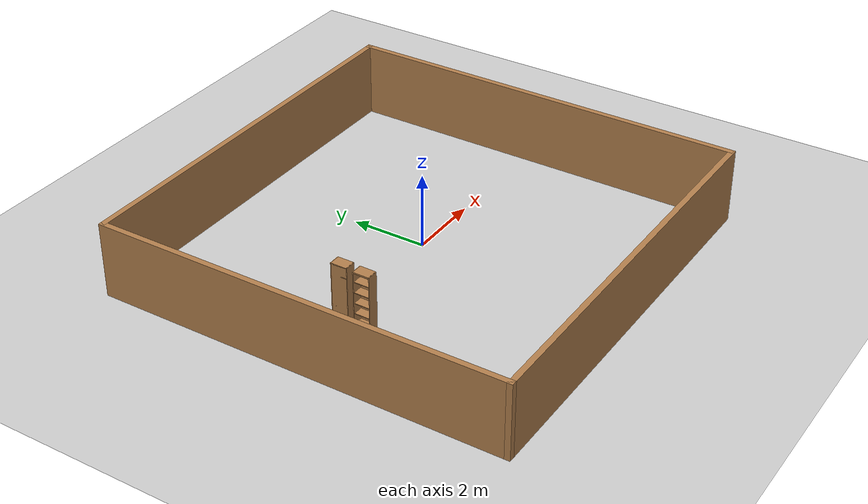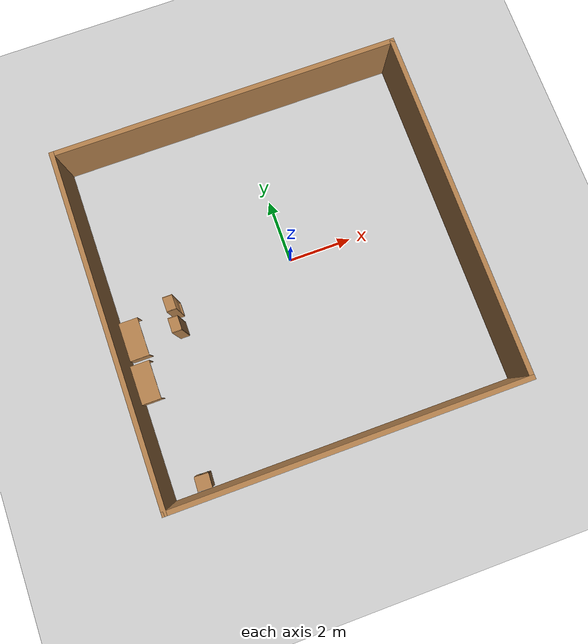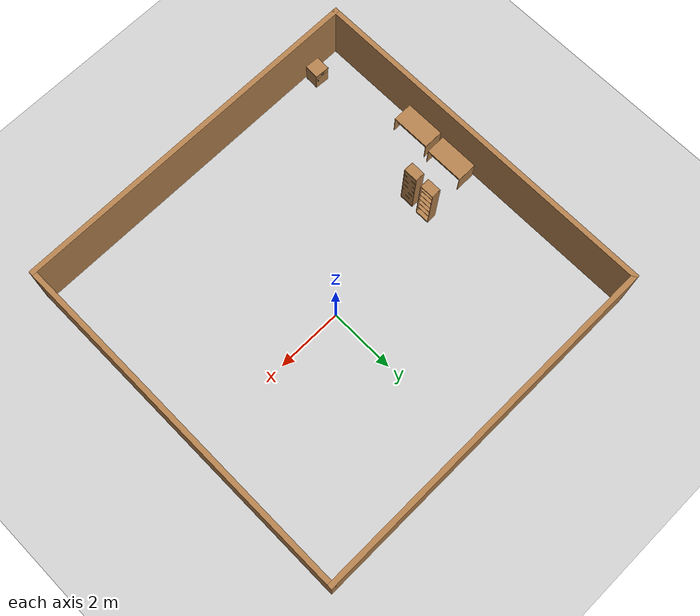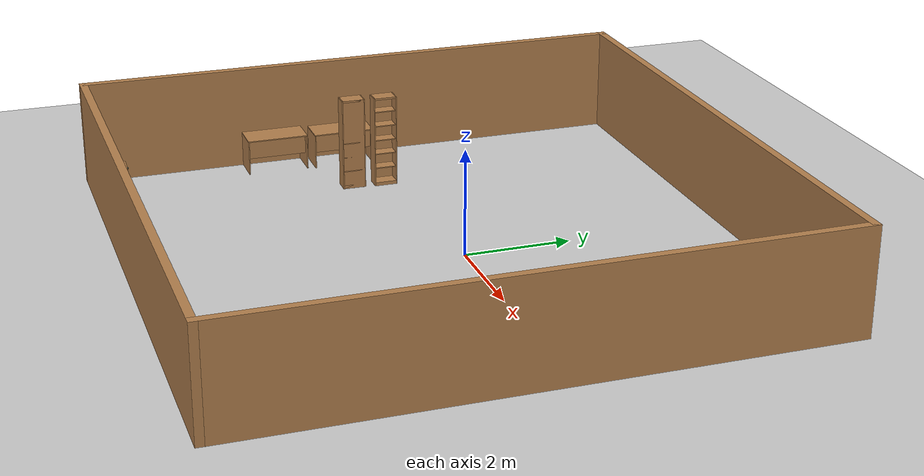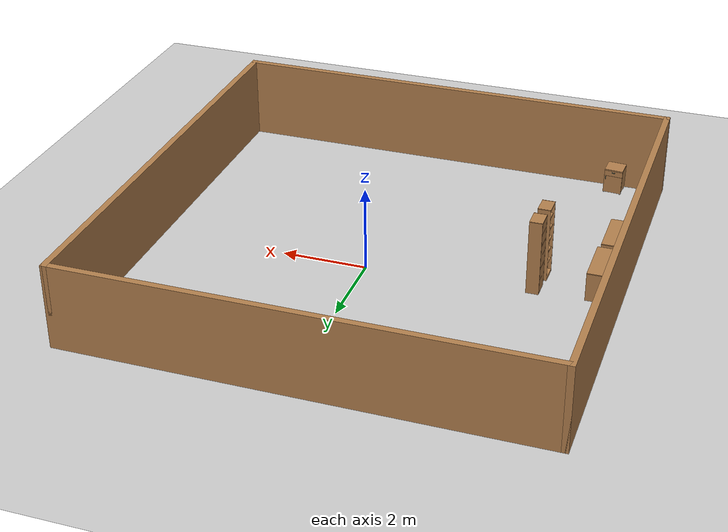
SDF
<sdf version="1.7">
 <world name="default">
  <model name="ground_plane">
   <static>1</static>
   <link name="link">
    <collision name="collision">
     <geometry><plane><normal>0 0 1</normal><size>100 100</size></plane></geometry>
     <surface><friction><ode><mu>100</mu><mu2>50</mu2></ode></friction></surface>
    </collision>
    <visual name="visual">
     <cast_shadows>0</cast_shadows>
     <geometry><plane><normal>0 0 1</normal><size>100 100</size></plane></geometry>
     <material>
      <script><uri>file://media/materials/scripts/gazebo.material</uri><name>Gazebo/Grey</name></script>
     </material>
    </visual>
   </link>
  </model>
  <model name="Untitled">
   <model name="Empty_World">
    <link name="Wall_6">
     <pose>0 5.425 0 0 -0 0</pose>
     <visual name="Wall_6_Visual">
      <pose>0 0 1 0 -0 0</pose>
      <geometry><box><size>11 0.15 2</size></box></geometry>
      <material>
       <script><uri>file://media/materials/scripts/gazebo.material</uri><name>Gazebo/Wood</name></script>
       <ambient>1 1 1 1</ambient>
       <diffuse>1 1 1 1</diffuse>
       <specular>0.2 0.2 0.2 1</specular>
       <emissive>0 0 0 1</emissive>
       <shader type="pixel"/>
      </material>
      <meta><layer>0</layer></meta>
     </visual>
     <collision name="Wall_6_Collision">
      <pose>0 0 1 0 -0 0</pose>
      <geometry><box><size>11 0.15 2</size></box></geometry>
      <surface>
       <friction>
        <ode><mu>1</mu><mu2>1</mu2><fdir1>0 0 0</fdir1><slip1>0</slip1><slip2>0</slip2></ode>
        <torsional>
         <coefficient>1</coefficient>
         <patch_radius>0</patch_radius>
         <surface_radius>0</surface_radius>
         <use_patch_radius>1</use_patch_radius>
         <ode><slip>0</slip></ode>
        </torsional>
       </friction>
       <bounce><restitution_coefficient>0</restitution_coefficient><threshold>1e+06</threshold></bounce>
       <contact>
        <collide_without_contact>0</collide_without_contact>
        <collide_without_contact_bitmask>1</collide_without_contact_bitmask>
        <collide_bitmask>1</collide_bitmask>
        <ode>
         <soft_cfm>0</soft_cfm>
         <soft_erp>0.2</soft_erp>
         <kp>1e+13</kp>
         <kd>1</kd>
         <max_vel>0.01</max_vel>
         <min_depth>0</min_depth>
        </ode>
        <bullet>
         <split_impulse>1</split_impulse>
         <split_impulse_penetration_threshold>-0.01</split_impulse_penetration_threshold>
         <soft_cfm>0</soft_cfm>
         <soft_erp>0.2</soft_erp>
         <kp>1e+13</kp>
         <kd>1</kd>
        </bullet>
       </contact>
      </surface>
     </collision>
    </link>
    <link name="Wall_7">
     <pose>5.425 0 0 0 0 -1.5708</pose>
     <visual name="Wall_7_Visual">
      <pose>0 0 1 0 -0 0</pose>
      <geometry><box><size>11 0.15 2</size></box></geometry>
      <material>
       <script><uri>file://media/materials/scripts/gazebo.material</uri><name>Gazebo/Wood</name></script>
       <ambient>1 1 1 1</ambient>
       <diffuse>1 1 1 1</diffuse>
       <specular>0.2 0.2 0.2 1</specular>
       <emissive>0 0 0 1</emissive>
       <shader type="pixel"/>
      </material>
      <meta><layer>0</layer></meta>
     </visual>
     <collision name="Wall_7_Collision">
      <pose>0 0 1 0 -0 0</pose>
      <geometry><box><size>11 0.15 2</size></box></geometry>
      <surface>
       <friction>
        <ode><mu>1</mu><mu2>1</mu2><fdir1>0 0 0</fdir1><slip1>0</slip1><slip2>0</slip2></ode>
        <torsional>
         <coefficient>1</coefficient>
         <patch_radius>0</patch_radius>
         <surface_radius>0</surface_radius>
         <use_patch_radius>1</use_patch_radius>
         <ode><slip>0</slip></ode>
        </torsional>
       </friction>
       <bounce><restitution_coefficient>0</restitution_coefficient><threshold>1e+06</threshold></bounce>
       <contact>
        <collide_without_contact>0</collide_without_contact>
        <collide_without_contact_bitmask>1</collide_without_contact_bitmask>
        <collide_bitmask>1</collide_bitmask>
        <ode>
         <soft_cfm>0</soft_cfm>
         <soft_erp>0.2</soft_erp>
         <kp>1e+13</kp>
         <kd>1</kd>
         <max_vel>0.01</max_vel>
         <min_depth>0</min_depth>
        </ode>
        <bullet>
         <split_impulse>1</split_impulse>
         <split_impulse_penetration_threshold>-0.01</split_impulse_penetration_threshold>
         <soft_cfm>0</soft_cfm>
         <soft_erp>0.2</soft_erp>
         <kp>1e+13</kp>
         <kd>1</kd>
        </bullet>
       </contact>
      </surface>
     </collision>
    </link>
    <link name="Wall_8">
     <pose>0 -5.425 0 0 -0 3.14159</pose>
     <visual name="Wall_8_Visual">
      <pose>0 0 1 0 -0 0</pose>
      <geometry><box><size>11 0.15 2</size></box></geometry>
      <material>
       <script><uri>file://media/materials/scripts/gazebo.material</uri><name>Gazebo/Wood</name></script>
       <ambient>1 1 1 1</ambient>
       <diffuse>1 1 1 1</diffuse>
       <specular>0.2 0.2 0.2 1</specular>
       <emissive>0 0 0 1</emissive>
       <shader type="pixel"/>
      </material>
      <meta><layer>0</layer></meta>
     </visual>
     <collision name="Wall_8_Collision">
      <pose>0 0 1 0 -0 0</pose>
      <geometry><box><size>11 0.15 2</size></box></geometry>
      <surface>
       <friction>
        <ode><mu>1</mu><mu2>1</mu2><fdir1>0 0 0</fdir1><slip1>0</slip1><slip2>0</slip2></ode>
        <torsional>
         <coefficient>1</coefficient>
         <patch_radius>0</patch_radius>
         <surface_radius>0</surface_radius>
         <use_patch_radius>1</use_patch_radius>
         <ode><slip>0</slip></ode>
        </torsional>
       </friction>
       <bounce><restitution_coefficient>0</restitution_coefficient><threshold>1e+06</threshold></bounce>
       <contact>
        <collide_without_contact>0</collide_without_contact>
        <collide_without_contact_bitmask>1</collide_without_contact_bitmask>
        <collide_bitmask>1</collide_bitmask>
        <ode>
         <soft_cfm>0</soft_cfm>
         <soft_erp>0.2</soft_erp>
         <kp>1e+13</kp>
         <kd>1</kd>
         <max_vel>0.01</max_vel>
         <min_depth>0</min_depth>
        </ode>
        <bullet>
         <split_impulse>1</split_impulse>
         <split_impulse_penetration_threshold>-0.01</split_impulse_penetration_threshold>
         <soft_cfm>0</soft_cfm>
         <soft_erp>0.2</soft_erp>
         <kp>1e+13</kp>
         <kd>1</kd>
        </bullet>
       </contact>
      </surface>
     </collision>
    </link>
    <link name="Wall_9">
     <pose>-5.425 0 0 0 -0 1.5708</pose>
     <visual name="Wall_9_Visual">
      <pose>0 0 1 0 -0 0</pose>
      <geometry><box><size>11 0.15 2</size></box></geometry>
      <material>
       <script><uri>file://media/materials/scripts/gazebo.material</uri><name>Gazebo/Wood</name></script>
       <ambient>1 1 1 1</ambient>
       <diffuse>1 1 1 1</diffuse>
       <specular>0.2 0.2 0.2 1</specular>
       <emissive>0 0 0 1</emissive>
       <shader type="pixel"/>
      </material>
      <meta><layer>0</layer></meta>
     </visual>
     <collision name="Wall_9_Collision">
      <pose>0 0 1 0 -0 0</pose>
      <geometry><box><size>11 0.15 2</size></box></geometry>
      <surface>
       <friction>
        <ode><mu>1</mu><mu2>1</mu2><fdir1>0 0 0</fdir1><slip1>0</slip1><slip2>0</slip2></ode>
        <torsional>
         <coefficient>1</coefficient>
         <patch_radius>0</patch_radius>
         <surface_radius>0</surface_radius>
         <use_patch_radius>1</use_patch_radius>
         <ode><slip>0</slip></ode>
        </torsional>
       </friction>
       <bounce><restitution_coefficient>0</restitution_coefficient><threshold>1e+06</threshold></bounce>
       <contact>
        <collide_without_contact>0</collide_without_contact>
        <collide_without_contact_bitmask>1</collide_without_contact_bitmask>
        <collide_bitmask>1</collide_bitmask>
        <ode>
         <soft_cfm>0</soft_cfm>
         <soft_erp>0.2</soft_erp>
         <kp>1e+13</kp>
         <kd>1</kd>
         <max_vel>0.01</max_vel>
         <min_depth>0</min_depth>
        </ode>
        <bullet>
         <split_impulse>1</split_impulse>
         <split_impulse_penetration_threshold>-0.01</split_impulse_penetration_threshold>
         <soft_cfm>0</soft_cfm>
         <soft_erp>0.2</soft_erp>
         <kp>1e+13</kp>
         <kd>1</kd>
        </bullet>
       </contact>
      </surface>
     </collision>
    </link>
    <static>1</static>
   </model>
   <static>0</static>
   <pose>-0.312257 -0.39044 0 0 -0 0</pose>
  </model>
  <model name="office_desk_clone_1">
   <link name="link">
    <inertial>
     <mass>10</mass>
     <inertia><ixx>1</ixx><ixy>0</ixy><ixz>0</ixz><iyy>1</iyy><iyz>0</iyz><izz>1</izz></inertia>
    </inertial>
    <visual name="top_board">
     <pose>-0.3 0.6 0.69 0 -0 0</pose>
     <geometry><box><size>0.6 1.2 0.02</size></box></geometry>
     <material>
      <script>
       <uri>model://base_materials/wood/scripts/wood.material</uri>
       <name>base_materials/dark_wood</name>
      </script>
     </material>
    </visual>
    <collision name="collision_top_board">
     <pose>-0.3 0.6 0.69 0 -0 0</pose>
     <geometry><box><size>0.6 1.2 0.02</size></box></geometry>
    </collision>
    <visual name="left_board">
     <pose>-0.3 0.01 0.34 0 -0 0</pose>
     <geometry><box><size>0.6 0.02 0.68</size></box></geometry>
     <material>
      <script>
       <uri>model://base_materials/wood/scripts/wood.material</uri>
       <name>base_materials/dark_wood</name>
      </script>
     </material>
    </visual>
    <collision name="collision_left_board">
     <pose>-0.3 0.01 0.34 0 -0 0</pose>
     <geometry><box><size>0.6 0.02 0.68</size></box></geometry>
    </collision>
    <visual name="right_board">
     <pose>-0.3 1.19 0.34 0 -0 0</pose>
     <geometry><box><size>0.6 0.02 0.68</size></box></geometry>
     <material>
      <script>
       <uri>model://base_materials/wood/scripts/wood.material</uri>
       <name>base_materials/dark_wood</name>
      </script>
     </material>
    </visual>
    <collision name="collision_right_board">
     <pose>-0.3 1.19 0.34 0 -0 0</pose>
     <geometry><box><size>0.6 0.02 0.68</size></box></geometry>
    </collision>
    <visual name="center_board">
     <pose>-0.14 0.6 0.49 0 -0 0</pose>
     <geometry><box><size>0.02 1.16 0.4</size></box></geometry>
     <material>
      <script>
       <uri>model://base_materials/wood/scripts/wood.material</uri>
       <name>base_materials/dark_wood</name>
      </script>
     </material>
    </visual>
    <collision name="ollision_center_board">
     <pose>-0.14 0.6 0.49 0 -0 0</pose>
     <geometry><box><size>0.02 1.16 0.4</size></box></geometry>
    </collision>
    <velocity_decay><linear>0</linear><angular>0</angular></velocity_decay>
   </link>
   <static>1</static>
   <pose>-5.003 -1.43032 0 0 -0 0</pose>
  </model>
  <model name="office_desk_clone_2">
   <link name="link">
    <inertial>
     <mass>10</mass>
     <inertia><ixx>1</ixx><ixy>0</ixy><ixz>0</ixz><iyy>1</iyy><iyz>0</iyz><izz>1</izz></inertia>
    </inertial>
    <visual name="top_board">
     <pose>-0.3 0.6 0.69 0 -0 0</pose>
     <geometry><box><size>0.6 1.2 0.02</size></box></geometry>
     <material>
      <script>
       <uri>model://base_materials/wood/scripts/wood.material</uri>
       <name>base_materials/dark_wood</name>
      </script>
     </material>
    </visual>
    <collision name="collision_top_board">
     <pose>-0.3 0.6 0.69 0 -0 0</pose>
     <geometry><box><size>0.6 1.2 0.02</size></box></geometry>
    </collision>
    <visual name="left_board">
     <pose>-0.3 0.01 0.34 0 -0 0</pose>
     <geometry><box><size>0.6 0.02 0.68</size></box></geometry>
     <material>
      <script>
       <uri>model://base_materials/wood/scripts/wood.material</uri>
       <name>base_materials/dark_wood</name>
      </script>
     </material>
    </visual>
    <collision name="collision_left_board">
     <pose>-0.3 0.01 0.34 0 -0 0</pose>
     <geometry><box><size>0.6 0.02 0.68</size></box></geometry>
    </collision>
    <visual name="right_board">
     <pose>-0.3 1.19 0.34 0 -0 0</pose>
     <geometry><box><size>0.6 0.02 0.68</size></box></geometry>
     <material>
      <script>
       <uri>model://base_materials/wood/scripts/wood.material</uri>
       <name>base_materials/dark_wood</name>
      </script>
     </material>
    </visual>
    <collision name="collision_right_board">
     <pose>-0.3 1.19 0.34 0 -0 0</pose>
     <geometry><box><size>0.6 0.02 0.68</size></box></geometry>
    </collision>
    <visual name="center_board">
     <pose>-0.14 0.6 0.49 0 -0 0</pose>
     <geometry><box><size>0.02 1.16 0.4</size></box></geometry>
     <material>
      <script>
       <uri>model://base_materials/wood/scripts/wood.material</uri>
       <name>base_materials/dark_wood</name>
      </script>
     </material>
    </visual>
    <collision name="ollision_center_board">
     <pose>-0.14 0.6 0.49 0 -0 0</pose>
     <geometry><box><size>0.02 1.16 0.4</size></box></geometry>
    </collision>
    <velocity_decay><linear>0</linear><angular>0</angular></velocity_decay>
   </link>
   <static>1</static>
   <pose>-5.05966 -2.7706 0 0 -0 0</pose>
  </model>
  <model name="high_shelf_clone_0">
   <link name="link">
    <inertial>
     <mass>5</mass>
     <inertia><ixx>1</ixx><ixy>0</ixy><ixz>0</ixz><iyy>1</iyy><iyz>0</iyz><izz>1</izz></inertia>
    </inertial>
    <visual name="left_board">
     <pose>-0.1475 0.009 0.898 0 -0 0</pose>
     <geometry><box><size>0.295 0.018 1.796</size></box></geometry>
     <material>
      <script>
       <uri>model://base_materials/wood/scripts</uri>
       <uri>model://base_materials/wood/textures</uri>
       <name>base_materials/light_wood</name>
      </script>
     </material>
    </visual>
    <collision name="collision_left_board">
     <pose>-0.1475 0.009 0.898 0 -0 0</pose>
     <geometry><box><size>0.295 0.018 1.796</size></box></geometry>
    </collision>
    <visual name="right_board">
     <pose>-0.1475 0.441 0.898 0 -0 0</pose>
     <geometry><box><size>0.295 0.018 1.796</size></box></geometry>
     <material>
      <script>
       <uri>model://base_materials/wood/scripts</uri>
       <uri>model://base_materials/wood/textures</uri>
       <name>base_materials/light_wood</name>
      </script>
     </material>
    </visual>
    <collision name="collision_right_board">
     <pose>-0.1475 0.441 0.898 0 -0 0</pose>
     <geometry><box><size>0.295 0.018 1.796</size></box></geometry>
    </collision>
    <visual name="top_board">
     <pose>-0.1475 0.225 1.7825 0 -0 0</pose>
     <geometry><box><size>0.295 0.414 0.035</size></box></geometry>
     <material>
      <script>
       <uri>model://base_materials/wood/scripts</uri>
       <uri>model://base_materials/wood/textures</uri>
       <name>base_materials/light_wood</name>
      </script>
     </material>
    </visual>
    <collision name="collision_top_board">
     <pose>-0.1475 0.225 1.7825 0 -0 0</pose>
     <geometry><box><size>0.295 0.414 0.035</size></box></geometry>
    </collision>
    <visual name="1st_shelf">
     <pose>-0.162 0.225 1.51 0 -0 0</pose>
     <geometry><box><size>0.266 0.414 0.018</size></box></geometry>
     <material>
      <script>
       <uri>model://base_materials/wood/scripts</uri>
       <uri>model://base_materials/wood/textures</uri>
       <name>base_materials/light_wood</name>
      </script>
     </material>
    </visual>
    <collision name="collision_1st_shelf">
     <pose>-0.162 0.225 1.51 0 -0 0</pose>
     <geometry><box><size>0.266 0.414 0.018</size></box></geometry>
    </collision>
    <visual name="2nd_shelf">
     <pose>-0.162 0.225 1.22 0 -0 0</pose>
     <geometry><box><size>0.266 0.414 0.018</size></box></geometry>
     <material>
      <script>
       <uri>model://base_materials/wood/scripts</uri>
       <uri>model://base_materials/wood/textures</uri>
       <name>base_materials/light_wood</name>
      </script>
     </material>
    </visual>
    <collision name="collision_2nd_shelf">
     <pose>-0.162 0.225 1.22 0 -0 0</pose>
     <geometry><box><size>0.266 0.414 0.018</size></box></geometry>
    </collision>
    <visual name="3rd_shelf">
     <pose>-0.162 0.225 0.93 0 -0 0</pose>
     <geometry><box><size>0.266 0.414 0.018</size></box></geometry>
     <material>
      <script>
       <uri>model://base_materials/wood/scripts</uri>
       <uri>model://base_materials/wood/textures</uri>
       <name>base_materials/light_wood</name>
      </script>
     </material>
    </visual>
    <collision name="collision_3rd_shelf">
     <pose>-0.162 0.225 0.93 0 -0 0</pose>
     <geometry><box><size>0.266 0.414 0.018</size></box></geometry>
    </collision>
    <visual name="4th_shelf">
     <pose>-0.162 0.225 0.65 0 -0 0</pose>
     <geometry><box><size>0.266 0.414 0.018</size></box></geometry>
     <material>
      <script>
       <uri>model://base_materials/wood/scripts</uri>
       <uri>model://base_materials/wood/textures</uri>
       <name>base_materials/light_wood</name>
      </script>
     </material>
    </visual>
    <collision name="collision_4th_shelf">
     <pose>-0.162 0.225 0.65 0 -0 0</pose>
     <geometry><box><size>0.266 0.414 0.018</size></box></geometry>
    </collision>
    <visual name="5th_shelf">
     <pose>-0.162 0.225 0.36 0 -0 0</pose>
     <geometry><box><size>0.266 0.414 0.018</size></box></geometry>
     <material>
      <script>
       <uri>model://base_materials/wood/scripts</uri>
       <uri>model://base_materials/wood/textures</uri>
       <name>base_materials/light_wood</name>
      </script>
     </material>
    </visual>
    <collision name="collision_5th_shelf">
     <pose>-0.162 0.225 0.36 0 -0 0</pose>
     <geometry><box><size>0.266 0.414 0.018</size></box></geometry>
    </collision>
    <visual name="bottom_board">
     <pose>-0.1475 0.225 0.035 0 -0 0</pose>
     <geometry><box><size>0.295 0.414 0.07</size></box></geometry>
     <material>
      <script>
       <uri>model://base_materials/wood/scripts</uri>
       <uri>model://base_materials/wood/textures</uri>
       <name>base_materials/light_wood</name>
      </script>
     </material>
    </visual>
    <collision name="collision_bottom_board">
     <pose>-0.1475 0.225 0.035 0 -0 0</pose>
     <geometry><box><size>0.295 0.414 0.07</size></box></geometry>
    </collision>
    <visual name="back_board">
     <pose>-0.286 0.225 0.898 0 -0 0</pose>
     <geometry><box><size>0.018 0.414 1.796</size></box></geometry>
     <material>
      <script>
       <uri>model://base_materials/wood/scripts</uri>
       <uri>model://base_materials/wood/textures</uri>
       <name>base_materials/light_wood</name>
      </script>
     </material>
    </visual>
    <collision name="collision_back_board">
     <pose>-0.286 0.225 0.898 0 -0 0</pose>
     <geometry><box><size>0.018 0.414 1.796</size></box></geometry>
    </collision>
    <velocity_decay><linear>0</linear><angular>0</angular></velocity_decay>
   </link>
   <static>1</static>
   <pose>-3.69673 -0.57353 0 0 -0 0</pose>
  </model>
  <model name="high_shelf_clone_clone">
   <link name="link">
    <inertial>
     <mass>5</mass>
     <inertia><ixx>1</ixx><ixy>0</ixy><ixz>0</ixz><iyy>1</iyy><iyz>0</iyz><izz>1</izz></inertia>
    </inertial>
    <visual name="left_board">
     <pose>-0.1475 0.009 0.898 0 -0 0</pose>
     <geometry><box><size>0.295 0.018 1.796</size></box></geometry>
     <material>
      <script>
       <uri>model://base_materials/wood/scripts</uri>
       <uri>model://base_materials/wood/textures</uri>
       <name>base_materials/light_wood</name>
      </script>
     </material>
    </visual>
    <collision name="collision_left_board">
     <pose>-0.1475 0.009 0.898 0 -0 0</pose>
     <geometry><box><size>0.295 0.018 1.796</size></box></geometry>
    </collision>
    <visual name="right_board">
     <pose>-0.1475 0.441 0.898 0 -0 0</pose>
     <geometry><box><size>0.295 0.018 1.796</size></box></geometry>
     <material>
      <script>
       <uri>model://base_materials/wood/scripts</uri>
       <uri>model://base_materials/wood/textures</uri>
       <name>base_materials/light_wood</name>
      </script>
     </material>
    </visual>
    <collision name="collision_right_board">
     <pose>-0.1475 0.441 0.898 0 -0 0</pose>
     <geometry><box><size>0.295 0.018 1.796</size></box></geometry>
    </collision>
    <visual name="top_board">
     <pose>-0.1475 0.225 1.7825 0 -0 0</pose>
     <geometry><box><size>0.295 0.414 0.035</size></box></geometry>
     <material>
      <script>
       <uri>model://base_materials/wood/scripts</uri>
       <uri>model://base_materials/wood/textures</uri>
       <name>base_materials/light_wood</name>
      </script>
     </material>
    </visual>
    <collision name="collision_top_board">
     <pose>-0.1475 0.225 1.7825 0 -0 0</pose>
     <geometry><box><size>0.295 0.414 0.035</size></box></geometry>
    </collision>
    <visual name="1st_shelf">
     <pose>-0.162 0.225 1.51 0 -0 0</pose>
     <geometry><box><size>0.266 0.414 0.018</size></box></geometry>
     <material>
      <script>
       <uri>model://base_materials/wood/scripts</uri>
       <uri>model://base_materials/wood/textures</uri>
       <name>base_materials/light_wood</name>
      </script>
     </material>
    </visual>
    <collision name="collision_1st_shelf">
     <pose>-0.162 0.225 1.51 0 -0 0</pose>
     <geometry><box><size>0.266 0.414 0.018</size></box></geometry>
    </collision>
    <visual name="2nd_shelf">
     <pose>-0.162 0.225 1.22 0 -0 0</pose>
     <geometry><box><size>0.266 0.414 0.018</size></box></geometry>
     <material>
      <script>
       <uri>model://base_materials/wood/scripts</uri>
       <uri>model://base_materials/wood/textures</uri>
       <name>base_materials/light_wood</name>
      </script>
     </material>
    </visual>
    <collision name="collision_2nd_shelf">
     <pose>-0.162 0.225 1.22 0 -0 0</pose>
     <geometry><box><size>0.266 0.414 0.018</size></box></geometry>
    </collision>
    <visual name="3rd_shelf">
     <pose>-0.162 0.225 0.93 0 -0 0</pose>
     <geometry><box><size>0.266 0.414 0.018</size></box></geometry>
     <material>
      <script>
       <uri>model://base_materials/wood/scripts</uri>
       <uri>model://base_materials/wood/textures</uri>
       <name>base_materials/light_wood</name>
      </script>
     </material>
    </visual>
    <collision name="collision_3rd_shelf">
     <pose>-0.162 0.225 0.93 0 -0 0</pose>
     <geometry><box><size>0.266 0.414 0.018</size></box></geometry>
    </collision>
    <visual name="4th_shelf">
     <pose>-0.162 0.225 0.65 0 -0 0</pose>
     <geometry><box><size>0.266 0.414 0.018</size></box></geometry>
     <material>
      <script>
       <uri>model://base_materials/wood/scripts</uri>
       <uri>model://base_materials/wood/textures</uri>
       <name>base_materials/light_wood</name>
      </script>
     </material>
    </visual>
    <collision name="collision_4th_shelf">
     <pose>-0.162 0.225 0.65 0 -0 0</pose>
     <geometry><box><size>0.266 0.414 0.018</size></box></geometry>
    </collision>
    <visual name="5th_shelf">
     <pose>-0.162 0.225 0.36 0 -0 0</pose>
     <geometry><box><size>0.266 0.414 0.018</size></box></geometry>
     <material>
      <script>
       <uri>model://base_materials/wood/scripts</uri>
       <uri>model://base_materials/wood/textures</uri>
       <name>base_materials/light_wood</name>
      </script>
     </material>
    </visual>
    <collision name="collision_5th_shelf">
     <pose>-0.162 0.225 0.36 0 -0 0</pose>
     <geometry><box><size>0.266 0.414 0.018</size></box></geometry>
    </collision>
    <visual name="bottom_board">
     <pose>-0.1475 0.225 0.035 0 -0 0</pose>
     <geometry><box><size>0.295 0.414 0.07</size></box></geometry>
     <material>
      <script>
       <uri>model://base_materials/wood/scripts</uri>
       <uri>model://base_materials/wood/textures</uri>
       <name>base_materials/light_wood</name>
      </script>
     </material>
    </visual>
    <collision name="collision_bottom_board">
     <pose>-0.1475 0.225 0.035 0 -0 0</pose>
     <geometry><box><size>0.295 0.414 0.07</size></box></geometry>
    </collision>
    <visual name="back_board">
     <pose>-0.286 0.225 0.898 0 -0 0</pose>
     <geometry><box><size>0.018 0.414 1.796</size></box></geometry>
     <material>
      <script>
       <uri>model://base_materials/wood/scripts</uri>
       <uri>model://base_materials/wood/textures</uri>
       <name>base_materials/light_wood</name>
      </script>
     </material>
    </visual>
    <collision name="collision_back_board">
     <pose>-0.286 0.225 0.898 0 -0 0</pose>
     <geometry><box><size>0.018 0.414 1.796</size></box></geometry>
    </collision>
    <velocity_decay><linear>0</linear><angular>0</angular></velocity_decay>
   </link>
   <static>1</static>
   <pose>-4.02785 -0.749438 0 0 -0 3.13126</pose>
  </model>
  <model name="wagon">
   <link name="link">
    <inertial>
     <mass>10</mass>
     <inertia><ixx>1</ixx><ixy>0</ixy><ixz>0</ixz><iyy>1</iyy><iyz>0</iyz><izz>1</izz></inertia>
    </inertial>
    <visual name="left_board">
     <pose>-0.2325 0.01 0.345 0 -0 0</pose>
     <geometry><box><size>0.415 0.02 0.59</size></box></geometry>
     <material>
      <script><uri>model://base_materials/wood/scripts/wood.material</uri><name>base_materials/wood</name></script>
     </material>
    </visual>
    <collision name="collision_left_board">
     <pose>-0.2325 0.01 0.345 0 -0 0</pose>
     <geometry><box><size>0.415 0.02 0.59</size></box></geometry>
    </collision>
    <visual name="right_board">
     <pose>-0.2325 0.4325 0.345 0 -0 0</pose>
     <geometry><box><size>0.415 0.02 0.59</size></box></geometry>
     <material>
      <script><uri>model://base_materials/wood/scripts/wood.material</uri><name>base_materials/wood</name></script>
     </material>
    </visual>
    <collision name="collision_right_board">
     <pose>-0.2325 0.4325 0.345 0 -0 0</pose>
     <geometry><box><size>0.415 0.02 0.59</size></box></geometry>
    </collision>
    <visual name="top_board">
     <pose>-0.22 0.2225 0.655 0 -0 0</pose>
     <geometry><box><size>0.44 0.445 0.03</size></box></geometry>
     <material>
      <script><uri>model://base_materials/wood/scripts/wood.material</uri><name>base_materials/wood</name></script>
     </material>
    </visual>
    <collision name="collision_top_board">
     <pose>-0.22 0.2225 0.655 0 -0 0</pose>
     <geometry><box><size>0.44 0.445 0.03</size></box></geometry>
    </collision>
    <visual name="back_board">
     <pose>-0.425 0.2225 0.345 0 -0 0</pose>
     <geometry><box><size>0.02 0.405 0.59</size></box></geometry>
     <material>
      <script><uri>model://base_materials/wood/scripts/wood.material</uri><name>base_materials/wood</name></script>
     </material>
    </visual>
    <collision name="collision_back_board">
     <pose>-0.425 0.2225 0.345 0 -0 0</pose>
     <geometry><box><size>0.02 0.405 0.59</size></box></geometry>
    </collision>
    <visual name="bottom_board">
     <pose>-0.2325 0.2225 0.06 0 -0 0</pose>
     <geometry><box><size>0.415 0.405 0.02</size></box></geometry>
     <material>
      <script><uri>model://base_materials/wood/scripts/wood.material</uri><name>base_materials/wood</name></script>
     </material>
    </visual>
    <collision name="collision_bottom_board">
     <pose>-0.2325 0.2225 0.06 0 -0 0</pose>
     <geometry><box><size>0.415 0.405 0.02</size></box></geometry>
    </collision>
    <visual name="1st_drawer">
     <pose>-0.0125 0.2225 0.57 0 -0 0</pose>
     <geometry><box><size>0.025 0.445 0.14</size></box></geometry>
     <material>
      <script><uri>model://base_materials/wood/scripts/wood.material</uri><name>base_materials/wood</name></script>
     </material>
    </visual>
    <collision name="collision_1st_drawer">
     <pose>-0.0125 0.2225 0.57 0 -0 0</pose>
     <geometry><box><size>0.025 0.445 0.14</size></box></geometry>
    </collision>
    <visual name="1st_drawer_handle_l1">
     <pose>0.0115 0.1895 0.6 3.14159 1.57079 3.14159</pose>
     <geometry><cylinder><radius>0.007</radius><length>0.023</length></cylinder></geometry>
     <material>
      <ambient>0.18431 0.3098 0.3098 1</ambient>
      <diffuse>0.18431 0.3098 0.3098 1</diffuse>
      <specular>0.1 0.1 0.1 1</specular>
     </material>
    </visual>
    <collision name="collision_1st_drawer_handle_l1">
     <pose>0.0115 0.1895 0.6 3.14159 1.57079 3.14159</pose>
     <geometry><cylinder><radius>0.007</radius><length>0.023</length></cylinder></geometry>
    </collision>
    <visual name="1st_drawer_handle_l2">
     <pose>0.023 0.1895 0.6 0 -0 0</pose>
     <geometry><sphere><radius>0.007</radius></sphere></geometry>
     <material>
      <ambient>0.18431 0.3098 0.3098 1</ambient>
      <diffuse>0.18431 0.3098 0.3098 1</diffuse>
      <specular>0.1 0.1 0.1 1</specular>
     </material>
    </visual>
    <collision name="collision_1st_drawer_handle_l2">
     <pose>0.023 0.1895 0.6 0 -0 0</pose>
     <geometry><sphere><radius>0.007</radius></sphere></geometry>
    </collision>
    <visual name="1st_drawer_handle_r1">
     <pose>0.0115 0.2555 0.6 3.14159 1.57079 3.14159</pose>
     <geometry><cylinder><radius>0.007</radius><length>0.023</length></cylinder></geometry>
     <material>
      <ambient>0.18431 0.3098 0.3098 1</ambient>
      <diffuse>0.18431 0.3098 0.3098 1</diffuse>
      <specular>0.1 0.1 0.1 1</specular>
     </material>
    </visual>
    <collision name="collision_1st_drawer_handle_r1">
     <pose>0.0115 0.2555 0.6 3.14159 1.57079 3.14159</pose>
     <geometry><cylinder><radius>0.007</radius><length>0.023</length></cylinder></geometry>
    </collision>
    <visual name="1st_drawer_handle_r2">
     <pose>0.023 0.2555 0.6 0 -0 0</pose>
     <geometry><sphere><radius>0.007</radius></sphere></geometry>
     <material>
      <ambient>0.18431 0.3098 0.3098 1</ambient>
      <diffuse>0.18431 0.3098 0.3098 1</diffuse>
      <specular>0.1 0.1 0.1 1</specular>
     </material>
    </visual>
    <collision name="collision_1st_drawer_handle_r2">
     <pose>0.023 0.2555 0.6 0 -0 0</pose>
     <geometry><sphere><radius>0.007</radius></sphere></geometry>
    </collision>
    <visual name="1st_drawer_handle_center">
     <pose>0.023 0.2225 0.6 1.5708 -0 0</pose>
     <geometry><cylinder><radius>0.007</radius><length>0.066</length></cylinder></geometry>
     <material>
      <ambient>0.18431 0.3098 0.3098 1</ambient>
      <diffuse>0.18431 0.3098 0.3098 1</diffuse>
      <specular>0.1 0.1 0.1 1</specular>
     </material>
    </visual>
    <collision name="collision_1st_drawer_handle_center">
     <pose>0.023 0.2225 0.6 1.5708 -0 0</pose>
     <geometry><cylinder><radius>0.007</radius><length>0.066</length></cylinder></geometry>
    </collision>
    <visual name="2nd_drawer">
     <pose>-0.0125 0.2225 0.275 0 -0 0</pose>
     <geometry><box><size>0.025 0.445 0.45</size></box></geometry>
     <material>
      <script><uri>model://base_materials/wood/scripts/wood.material</uri><name>base_materials/wood</name></script>
     </material>
    </visual>
    <collision name="collision_2nd_drawer">
     <pose>-0.0125 0.2225 0.275 0 -0 0</pose>
     <geometry><box><size>0.025 0.445 0.45</size></box></geometry>
    </collision>
    <visual name="2nd_drawer_handle_top1">
     <pose>0.0115 0.04 0.47 3.14159 1.57079 3.14159</pose>
     <geometry><cylinder><radius>0.007</radius><length>0.023</length></cylinder></geometry>
     <material>
      <ambient>0.18431 0.3098 0.3098 1</ambient>
      <diffuse>0.18431 0.3098 0.3098 1</diffuse>
      <specular>0.1 0.1 0.1 1</specular>
     </material>
    </visual>
    <collision name="collision_2nd_drawer_handle_top1">
     <pose>0.0115 0.04 0.47 3.14159 1.57079 3.14159</pose>
     <geometry><cylinder><radius>0.007</radius><length>0.023</length></cylinder></geometry>
    </collision>
    <visual name="2nd_drawer_handle_top2">
     <pose>0.023 0.04 0.47 0 -0 0</pose>
     <geometry><sphere><radius>0.007</radius></sphere></geometry>
     <material>
      <ambient>0.18431 0.3098 0.3098 1</ambient>
      <diffuse>0.18431 0.3098 0.3098 1</diffuse>
      <specular>0.1 0.1 0.1 1</specular>
     </material>
    </visual>
    <collision name="2nd_drawer_handle_top2">
     <pose>0.023 0.04 0.47 0 -0 0</pose>
     <geometry><sphere><radius>0.007</radius></sphere></geometry>
    </collision>
    <visual name="2nd_drawer_handle_bottom1">
     <pose>0.0115 0.04 0.404 3.14159 1.57079 3.14159</pose>
     <geometry><cylinder><radius>0.007</radius><length>0.023</length></cylinder></geometry>
     <material>
      <ambient>0.18431 0.3098 0.3098 1</ambient>
      <diffuse>0.18431 0.3098 0.3098 1</diffuse>
      <specular>0.1 0.1 0.1 1</specular>
     </material>
    </visual>
    <collision name="collision_2nd_drawer_handle_bottom1">
     <pose>0.0115 0.04 0.404 3.14159 1.57079 3.14159</pose>
     <geometry><cylinder><radius>0.007</radius><length>0.023</length></cylinder></geometry>
    </collision>
    <visual name="2nd_drawer_handle_bottom2">
     <pose>0.023 0.04 0.404 0 -0 0</pose>
     <geometry><sphere><radius>0.007</radius></sphere></geometry>
     <material>
      <ambient>0.18431 0.3098 0.3098 1</ambient>
      <diffuse>0.18431 0.3098 0.3098 1</diffuse>
      <specular>0.1 0.1 0.1 1</specular>
     </material>
    </visual>
    <collision name="2nd_drawer_handle_bottom2">
     <pose>0.023 0.04 0.404 0 -0 0</pose>
     <geometry><sphere><radius>0.007</radius></sphere></geometry>
    </collision>
    <visual name="2nd_drawer_handle_center">
     <pose>0.023 0.04 0.437 0 -0 0</pose>
     <geometry><cylinder><radius>0.007</radius><length>0.066</length></cylinder></geometry>
     <material>
      <ambient>0.18431 0.3098 0.3098 1</ambient>
      <diffuse>0.18431 0.3098 0.3098 1</diffuse>
      <specular>0.1 0.1 0.1 1</specular>
     </material>
    </visual>
    <collision name="collision_2nd_drawer_handle_center">
     <pose>0.023 0.04 0.437 0 -0 0</pose>
     <geometry><cylinder><radius>0.007</radius><length>0.066</length></cylinder></geometry>
    </collision>
    <visual name="left_front_caster">
     <pose>-0.07 0.025 0.025 3.14159 1.57079 3.14159</pose>
     <geometry><cylinder><radius>0.025</radius><length>0.035</length></cylinder></geometry>
     <material><script><name>Gazebo/Black</name><uri>__default__</uri></script></material>
    </visual>
    <collision name="collision_left_front_caster">
     <pose>-0.07 0.025 0.025 3.14159 1.57079 3.14159</pose>
     <geometry><cylinder><radius>0.025</radius><length>0.035</length></cylinder></geometry>
    </collision>
    <visual name="right_front_caster">
     <pose>-0.07 0.42 0.025 3.14159 1.57079 3.14159</pose>
     <geometry><cylinder><radius>0.025</radius><length>0.035</length></cylinder></geometry>
     <material><script><name>Gazebo/Black</name><uri>__default__</uri></script></material>
    </visual>
    <collision name="collision_right_front_caster">
     <pose>-0.07 0.42 0.025 3.14159 1.57079 3.14159</pose>
     <geometry><cylinder><radius>0.025</radius><length>0.035</length></cylinder></geometry>
    </collision>
    <visual name="left_back_caster">
     <pose>-0.39 0.025 0.025 3.14159 1.57079 3.14159</pose>
     <geometry><cylinder><radius>0.025</radius><length>0.035</length></cylinder></geometry>
     <material><script><name>Gazebo/Black</name><uri>__default__</uri></script></material>
    </visual>
    <collision name="collision_left_back_caster">
     <pose>-0.39 0.025 0.025 3.14159 1.57079 3.14159</pose>
     <geometry><cylinder><radius>0.025</radius><length>0.035</length></cylinder></geometry>
    </collision>
    <visual name="right_back_caster">
     <pose>-0.39 0.42 0.025 3.14159 1.57079 3.14159</pose>
     <geometry><cylinder><radius>0.025</radius><length>0.035</length></cylinder></geometry>
     <material><script><name>Gazebo/Black</name><uri>__default__</uri></script></material>
    </visual>
    <collision name="collision_right_back_caster">
     <pose>-0.39 0.42 0.025 3.14159 1.57079 3.14159</pose>
     <geometry><cylinder><radius>0.025</radius><length>0.035</length></cylinder></geometry>
    </collision>
    <velocity_decay><linear>0</linear><angular>0</angular></velocity_decay>
   </link>
   <static>1</static>
   <pose>-4.41297 -5.25541 0 -0.020334 -0.000888 1.52716</pose>
  </model>
 </world>
</sdf>
